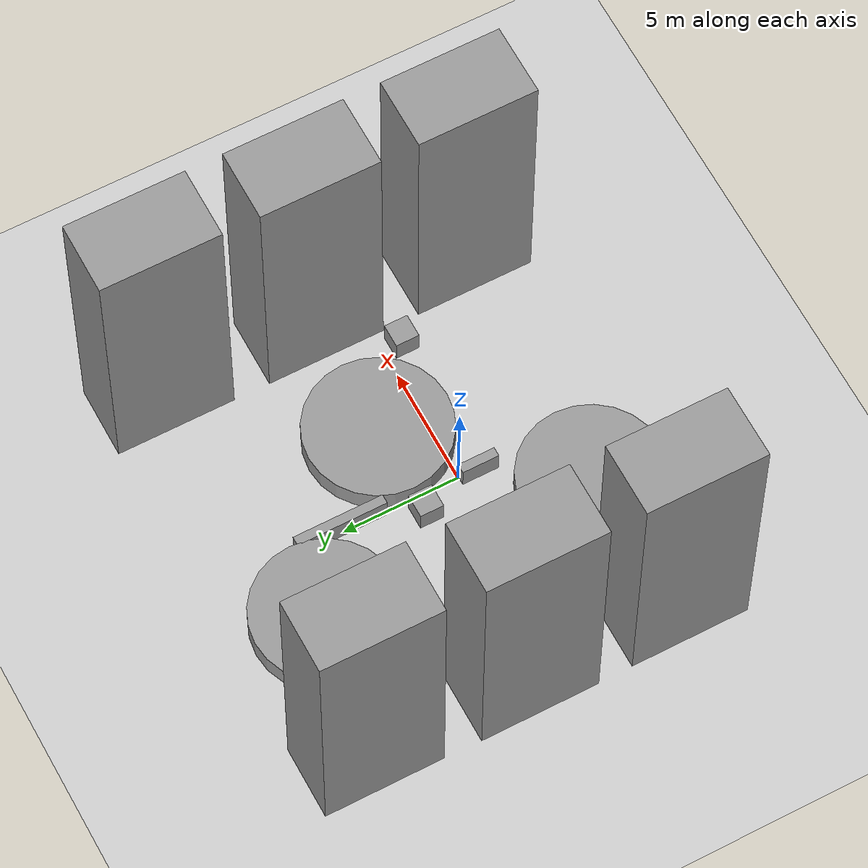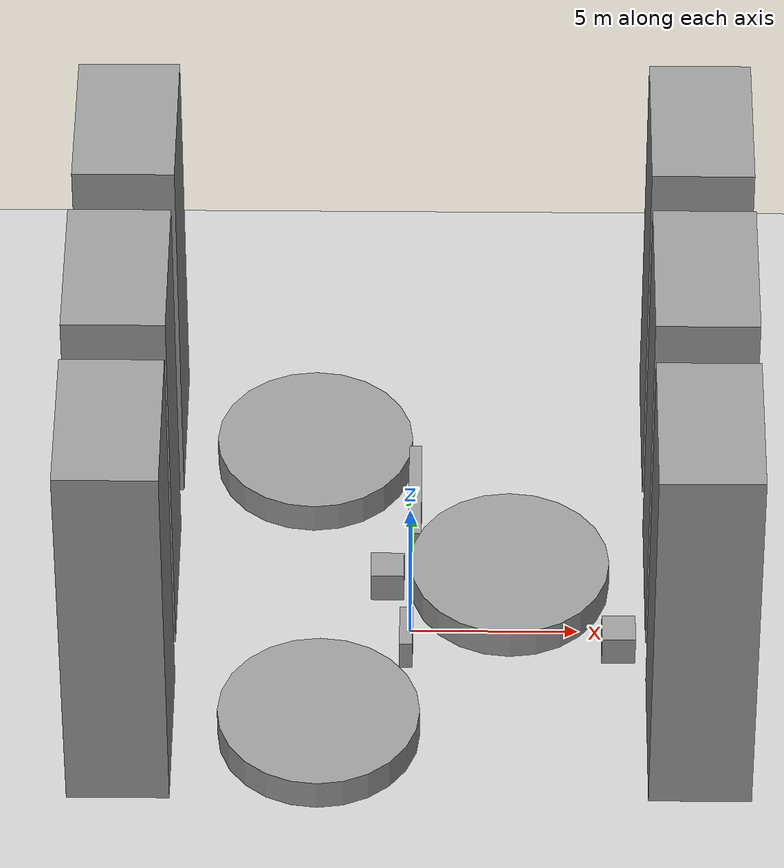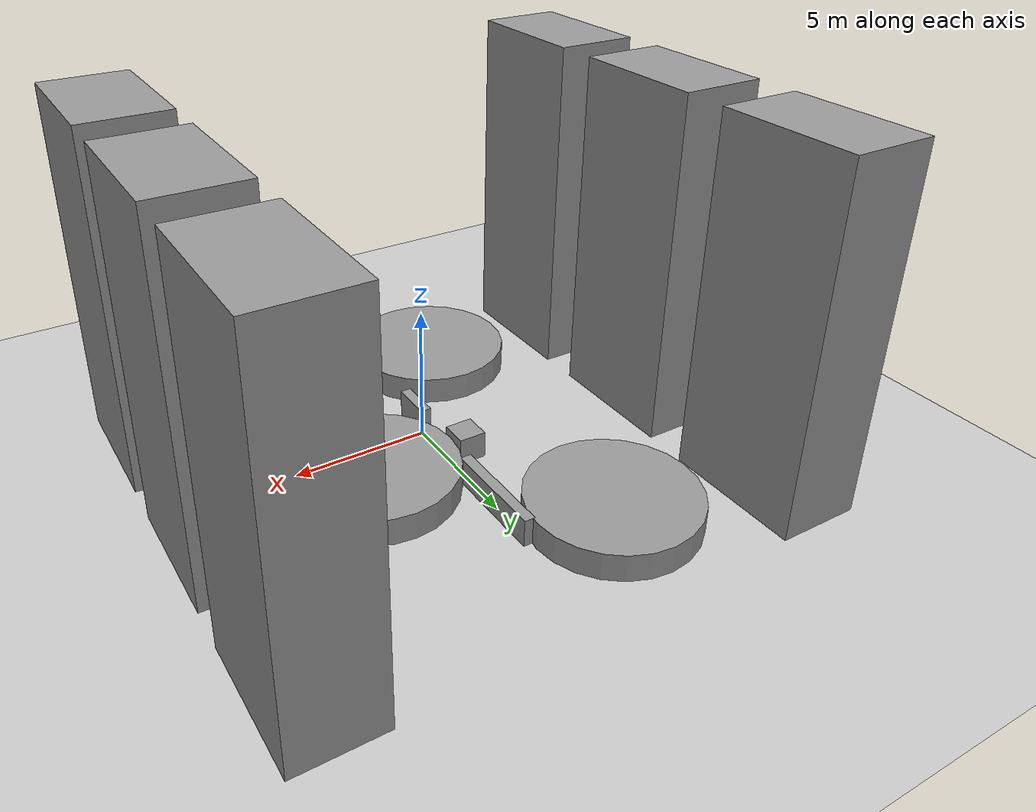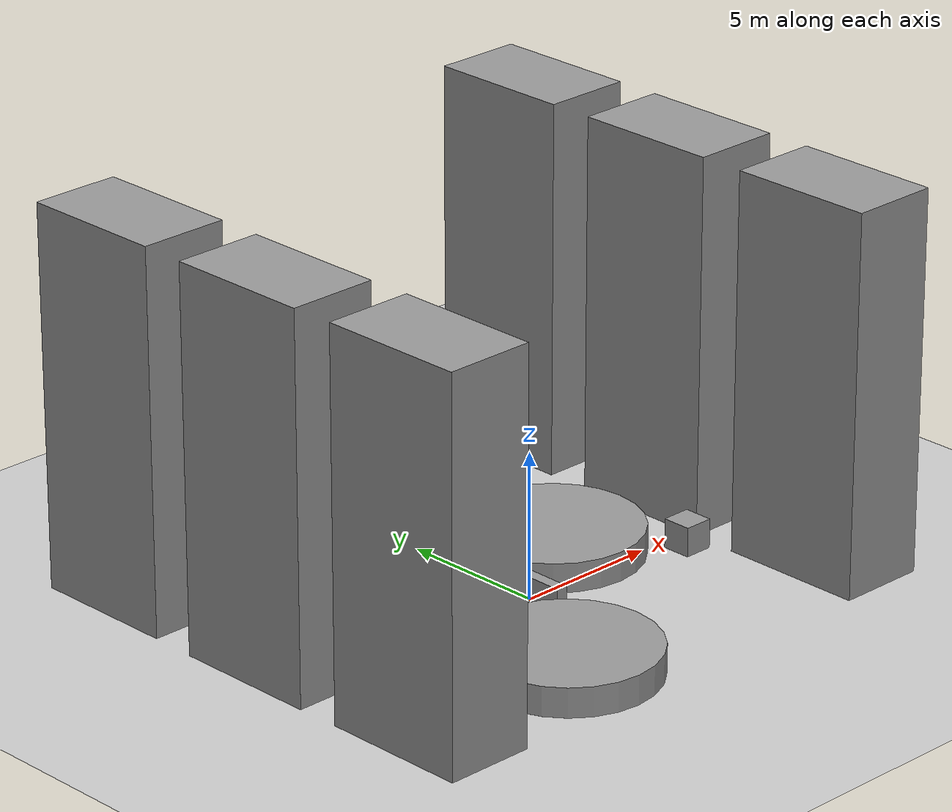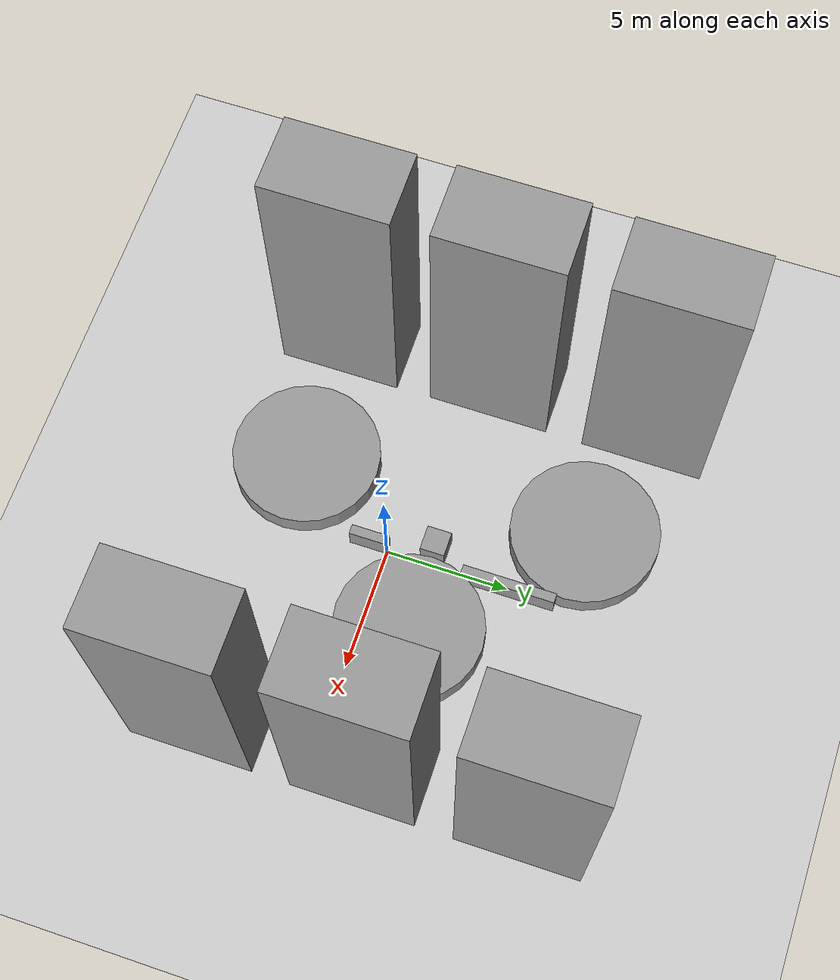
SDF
<sdf version="1.6">
 <world name="default">
  <light name="sun" type="directional">
   <pose>0 0 10 0 -0 0</pose>
   <diffuse>0.8 0.8 0.8 1</diffuse>
   <specular>0.1 0.1 0.1 1</specular>
   <attenuation>
    <range>1000</range>
    <constant>0.9</constant>
    <linear>0.01</linear>
    <quadratic>0.001</quadratic>
   </attenuation>
   <direction>-0.5 0.5 -1</direction>
  </light>
  <model name="ground_plane">
   <static>1</static>
   <link name="link">
    <collision name="collision">
     <geometry><plane><normal>0 0 1</normal><size>100 100</size></plane></geometry>
     <surface><friction><ode><mu>100</mu><mu2>50</mu2></ode></friction></surface>
    </collision>
    <visual name="visual">
     <cast_shadows>0</cast_shadows>
     <geometry><plane><normal>0 0 1</normal><size>100 100</size></plane></geometry>
     <material>
      <script><uri>file://media/materials/scripts/gazebo.material</uri><name>Gazebo/Grey</name></script>
     </material>
    </visual>
   </link>
  </model>
  <gravity>0 0 -9.8</gravity>
  <magnetic_field>6e-06 2.3e-05 -4.2e-05</magnetic_field>
  <atmosphere type="adiabatic"/>
  <physics name="default_physics" default="0" type="ode">
   <max_step_size>0.001</max_step_size>
   <real_time_factor>1</real_time_factor>
   <real_time_update_rate>1000</real_time_update_rate>
  </physics>
  <scene><ambient>0.4 0.4 0.4 1</ambient><background>0.7 0.7 0.7 1</background><shadows>1</shadows></scene>
  <spherical_coordinates>
   <surface_model>EARTH_WGS84</surface_model>
   <latitude_deg>0</latitude_deg>
   <longitude_deg>0</longitude_deg>
   <elevation>0</elevation>
   <heading_deg>0</heading_deg>
  </spherical_coordinates>
  <audio><device>default</device></audio>
  <model name="unit_box_0">
   <link name="link">
    <inertial>
     <mass>1</mass>
     <inertia>
      <ixx>0.166667</ixx>
      <ixy>0</ixy>
      <ixz>0</ixz>
      <iyy>0.166667</iyy>
      <iyz>0</iyz>
      <izz>0.166667</izz>
     </inertia>
    </inertial>
    <visual name="visual">
     <geometry><box><size>0.391763 1.55857 1</size></box></geometry>
     <material>
      <script><name>Gazebo/Grey</name><uri>file://media/materials/scripts/gazebo.material</uri></script>
     </material>
    </visual>
    <collision name="collision">
     <geometry><box><size>0.391763 1.55857 1</size></box></geometry>
     <surface>
      <friction>
       <ode><mu>1</mu><mu2>1</mu2><fdir1>0 0 0</fdir1><slip1>0</slip1><slip2>0</slip2></ode>
       <torsional>
        <coefficient>1</coefficient>
        <patch_radius>0</patch_radius>
        <surface_radius>0</surface_radius>
        <use_patch_radius>1</use_patch_radius>
        <ode><slip>0</slip></ode>
       </torsional>
      </friction>
      <bounce><restitution_coefficient>0</restitution_coefficient><threshold>1e+06</threshold></bounce>
      <contact>
       <collide_without_contact>0</collide_without_contact>
       <collide_without_contact_bitmask>1</collide_without_contact_bitmask>
       <collide_bitmask>1</collide_bitmask>
       <ode>
        <soft_cfm>0</soft_cfm>
        <soft_erp>0.2</soft_erp>
        <kp>1e+13</kp>
        <kd>1</kd>
        <max_vel>0.01</max_vel>
        <min_depth>0</min_depth>
       </ode>
       <bullet>
        <split_impulse>1</split_impulse>
        <split_impulse_penetration_threshold>-0.01</split_impulse_penetration_threshold>
        <soft_cfm>0</soft_cfm>
        <soft_erp>0.2</soft_erp>
        <kp>1e+13</kp>
        <kd>1</kd>
       </bullet>
      </contact>
     </surface>
    </collision>
   </link>
   <static>1</static>
   <pose>-0.134652 -0.770759 0.5 0 2e-06 -2e-05</pose>
  </model>
  <model name="unit_cylinder">
   <link name="link">
    <inertial>
     <mass>1</mass>
     <inertia><ixx>0.145833</ixx><ixy>0</ixy><ixz>0</ixz><iyy>0.145833</iyy><iyz>0</iyz><izz>0.125</izz></inertia>
    </inertial>
    <visual name="visual">
     <geometry><cylinder><radius>2.99181</radius><length>1</length></cylinder></geometry>
     <material>
      <script><name>Gazebo/Grey</name><uri>file://media/materials/scripts/gazebo.material</uri></script>
     </material>
    </visual>
    <collision name="collision">
     <geometry><cylinder><radius>2.99181</radius><length>1</length></cylinder></geometry>
     <surface>
      <friction>
       <ode><mu>1</mu><mu2>1</mu2><fdir1>0 0 0</fdir1><slip1>0</slip1><slip2>0</slip2></ode>
       <torsional>
        <coefficient>1</coefficient>
        <patch_radius>0</patch_radius>
        <surface_radius>0</surface_radius>
        <use_patch_radius>1</use_patch_radius>
        <ode><slip>0</slip></ode>
       </torsional>
      </friction>
      <bounce><restitution_coefficient>0</restitution_coefficient><threshold>1e+06</threshold></bounce>
      <contact>
       <collide_without_contact>0</collide_without_contact>
       <collide_without_contact_bitmask>1</collide_without_contact_bitmask>
       <collide_bitmask>1</collide_bitmask>
       <ode>
        <soft_cfm>0</soft_cfm>
        <soft_erp>0.2</soft_erp>
        <kp>1e+13</kp>
        <kd>1</kd>
        <max_vel>0.01</max_vel>
        <min_depth>0</min_depth>
       </ode>
       <bullet>
        <split_impulse>1</split_impulse>
        <split_impulse_penetration_threshold>-0.01</split_impulse_penetration_threshold>
        <soft_cfm>0</soft_cfm>
        <soft_erp>0.2</soft_erp>
        <kp>1e+13</kp>
        <kd>1</kd>
       </bullet>
      </contact>
     </surface>
    </collision>
   </link>
   <static>1</static>
   <pose>-2.68251 -4.3235 0.499996 1e-06 1e-06 0.000953</pose>
  </model>
  <model name="unit_cylinder_clone">
   <link name="link">
    <inertial>
     <mass>1</mass>
     <inertia><ixx>0.145833</ixx><ixy>0</ixy><ixz>0</ixz><iyy>0.145833</iyy><iyz>0</iyz><izz>0.125</izz></inertia>
    </inertial>
    <visual name="visual">
     <geometry><cylinder><radius>2.99181</radius><length>1</length></cylinder></geometry>
     <material>
      <script><name>Gazebo/Grey</name><uri>file://media/materials/scripts/gazebo.material</uri></script>
     </material>
    </visual>
    <collision name="collision">
     <geometry><cylinder><radius>2.99181</radius><length>1</length></cylinder></geometry>
     <surface>
      <friction>
       <ode><mu>1</mu><mu2>1</mu2><fdir1>0 0 0</fdir1><slip1>0</slip1><slip2>0</slip2></ode>
       <torsional>
        <coefficient>1</coefficient>
        <patch_radius>0</patch_radius>
        <surface_radius>0</surface_radius>
        <use_patch_radius>1</use_patch_radius>
        <ode><slip>0</slip></ode>
       </torsional>
      </friction>
      <bounce><restitution_coefficient>0</restitution_coefficient><threshold>1e+06</threshold></bounce>
      <contact>
       <collide_without_contact>0</collide_without_contact>
       <collide_without_contact_bitmask>1</collide_without_contact_bitmask>
       <collide_bitmask>1</collide_bitmask>
       <ode>
        <soft_cfm>0</soft_cfm>
        <soft_erp>0.2</soft_erp>
        <kp>1e+13</kp>
        <kd>1</kd>
        <max_vel>0.01</max_vel>
        <min_depth>0</min_depth>
       </ode>
       <bullet>
        <split_impulse>1</split_impulse>
        <split_impulse_penetration_threshold>-0.01</split_impulse_penetration_threshold>
        <soft_cfm>0</soft_cfm>
        <soft_erp>0.2</soft_erp>
        <kp>1e+13</kp>
        <kd>1</kd>
       </bullet>
      </contact>
     </surface>
    </collision>
   </link>
   <static>1</static>
   <pose>2.96714 1.92982 0.499996 1e-06 1e-06 0.000953</pose>
  </model>
  <model name="unit_cylinder_clone_0">
   <link name="link">
    <inertial>
     <mass>1</mass>
     <inertia><ixx>0.145833</ixx><ixy>0</ixy><ixz>0</ixz><iyy>0.145833</iyy><iyz>0</iyz><izz>0.125</izz></inertia>
    </inertial>
    <visual name="visual">
     <geometry><cylinder><radius>2.99181</radius><length>1</length></cylinder></geometry>
     <material>
      <script><name>Gazebo/Grey</name><uri>file://media/materials/scripts/gazebo.material</uri></script>
     </material>
    </visual>
    <collision name="collision">
     <geometry><cylinder><radius>2.99181</radius><length>1</length></cylinder></geometry>
     <surface>
      <friction>
       <ode><mu>1</mu><mu2>1</mu2><fdir1>0 0 0</fdir1><slip1>0</slip1><slip2>0</slip2></ode>
       <torsional>
        <coefficient>1</coefficient>
        <patch_radius>0</patch_radius>
        <surface_radius>0</surface_radius>
        <use_patch_radius>1</use_patch_radius>
        <ode><slip>0</slip></ode>
       </torsional>
      </friction>
      <bounce><restitution_coefficient>0</restitution_coefficient><threshold>1e+06</threshold></bounce>
      <contact>
       <collide_without_contact>0</collide_without_contact>
       <collide_without_contact_bitmask>1</collide_without_contact_bitmask>
       <collide_bitmask>1</collide_bitmask>
       <ode>
        <soft_cfm>0</soft_cfm>
        <soft_erp>0.2</soft_erp>
        <kp>1e+13</kp>
        <kd>1</kd>
        <max_vel>0.01</max_vel>
        <min_depth>0</min_depth>
       </ode>
       <bullet>
        <split_impulse>1</split_impulse>
        <split_impulse_penetration_threshold>-0.01</split_impulse_penetration_threshold>
        <soft_cfm>0</soft_cfm>
        <soft_erp>0.2</soft_erp>
        <kp>1e+13</kp>
        <kd>1</kd>
       </bullet>
      </contact>
     </surface>
    </collision>
   </link>
   <static>1</static>
   <pose>-2.98854 7.28031 0.499996 1e-06 1e-06 0.000953</pose>
  </model>
  <model name="building_1">
   <link name="link_0">
    <inertial>
     <mass>194.191</mass>
     <inertia><ixx>3088.08</ixx><ixy>0</ixy><ixz>0</ixz><iyy>2833.44</iyy><iyz>0</iyz><izz>550.342</izz></inertia>
    </inertial>
    <pose>-1.79176 -1.02079 -0 0 -0 0</pose>
    <visual name="visual">
     <geometry><box><size>3.02265 4.98717 12.8824</size></box></geometry>
     <material>
      <lighting>1</lighting>
      <script><uri>file://media/materials/scripts/gazebo.material</uri><name>Gazebo/Grey</name></script>
     </material>
    </visual>
    <collision name="collision">
     <geometry><box><size>3.02265 4.98717 12.8824</size></box></geometry>
     <surface>
      <friction>
       <ode><mu>1</mu><mu2>1</mu2><fdir1>0 0 0</fdir1><slip1>0</slip1><slip2>0</slip2></ode>
       <torsional>
        <coefficient>1</coefficient>
        <patch_radius>0</patch_radius>
        <surface_radius>0</surface_radius>
        <use_patch_radius>1</use_patch_radius>
        <ode><slip>0</slip></ode>
       </torsional>
      </friction>
      <bounce><restitution_coefficient>0</restitution_coefficient><threshold>1e+06</threshold></bounce>
      <contact>
       <collide_without_contact>0</collide_without_contact>
       <collide_without_contact_bitmask>1</collide_without_contact_bitmask>
       <collide_bitmask>1</collide_bitmask>
       <ode>
        <soft_cfm>0</soft_cfm>
        <soft_erp>0.2</soft_erp>
        <kp>1e+13</kp>
        <kd>1</kd>
        <max_vel>0.01</max_vel>
        <min_depth>0</min_depth>
       </ode>
       <bullet>
        <split_impulse>1</split_impulse>
        <split_impulse_penetration_threshold>-0.01</split_impulse_penetration_threshold>
        <soft_cfm>0</soft_cfm>
        <soft_erp>0.2</soft_erp>
        <kp>1e+13</kp>
        <kd>1</kd>
       </bullet>
      </contact>
     </surface>
    </collision>
   </link>
   <static>1</static>
   <pose>-6.76737 2.98424 6.4412 0 -0 0.0002</pose>
  </model>
  <model name="building_1_clone">
   <link name="link_0">
    <inertial>
     <mass>194.191</mass>
     <inertia><ixx>3088.08</ixx><ixy>0</ixy><ixz>0</ixz><iyy>2833.44</iyy><iyz>0</iyz><izz>550.342</izz></inertia>
    </inertial>
    <pose>-1.79176 -1.02079 -0 0 -0 0</pose>
    <visual name="visual">
     <geometry><box><size>3.02265 4.98717 12.8824</size></box></geometry>
     <material>
      <lighting>1</lighting>
      <script><uri>file://media/materials/scripts/gazebo.material</uri><name>Gazebo/Grey</name></script>
     </material>
    </visual>
    <collision name="collision">
     <geometry><box><size>3.02265 4.98717 12.8824</size></box></geometry>
     <surface>
      <friction>
       <ode><mu>1</mu><mu2>1</mu2><fdir1>0 0 0</fdir1><slip1>0</slip1><slip2>0</slip2></ode>
       <torsional>
        <coefficient>1</coefficient>
        <patch_radius>0</patch_radius>
        <surface_radius>0</surface_radius>
        <use_patch_radius>1</use_patch_radius>
        <ode><slip>0</slip></ode>
       </torsional>
      </friction>
      <bounce><restitution_coefficient>0</restitution_coefficient><threshold>1e+06</threshold></bounce>
      <contact>
       <collide_without_contact>0</collide_without_contact>
       <collide_without_contact_bitmask>1</collide_without_contact_bitmask>
       <collide_bitmask>1</collide_bitmask>
       <ode>
        <soft_cfm>0</soft_cfm>
        <soft_erp>0.2</soft_erp>
        <kp>1e+13</kp>
        <kd>1</kd>
        <max_vel>0.01</max_vel>
        <min_depth>0</min_depth>
       </ode>
       <bullet>
        <split_impulse>1</split_impulse>
        <split_impulse_penetration_threshold>-0.01</split_impulse_penetration_threshold>
        <soft_cfm>0</soft_cfm>
        <soft_erp>0.2</soft_erp>
        <kp>1e+13</kp>
        <kd>1</kd>
       </bullet>
      </contact>
     </surface>
    </collision>
   </link>
   <static>1</static>
   <pose>-6.73637 -3.45466 6.4412 0 -0 0.0002</pose>
  </model>
  <model name="building_1_clone_0">
   <link name="link_0">
    <inertial>
     <mass>194.191</mass>
     <inertia><ixx>3088.08</ixx><ixy>0</ixy><ixz>0</ixz><iyy>2833.44</iyy><iyz>0</iyz><izz>550.342</izz></inertia>
    </inertial>
    <pose>-1.79176 -1.02079 -0 0 -0 0</pose>
    <visual name="visual">
     <geometry><box><size>3.02265 4.98717 12.8824</size></box></geometry>
     <material>
      <lighting>1</lighting>
      <script><uri>file://media/materials/scripts/gazebo.material</uri><name>Gazebo/Grey</name></script>
     </material>
    </visual>
    <collision name="collision">
     <geometry><box><size>3.02265 4.98717 12.8824</size></box></geometry>
     <surface>
      <friction>
       <ode><mu>1</mu><mu2>1</mu2><fdir1>0 0 0</fdir1><slip1>0</slip1><slip2>0</slip2></ode>
       <torsional>
        <coefficient>1</coefficient>
        <patch_radius>0</patch_radius>
        <surface_radius>0</surface_radius>
        <use_patch_radius>1</use_patch_radius>
        <ode><slip>0</slip></ode>
       </torsional>
      </friction>
      <bounce><restitution_coefficient>0</restitution_coefficient><threshold>1e+06</threshold></bounce>
      <contact>
       <collide_without_contact>0</collide_without_contact>
       <collide_without_contact_bitmask>1</collide_without_contact_bitmask>
       <collide_bitmask>1</collide_bitmask>
       <ode>
        <soft_cfm>0</soft_cfm>
        <soft_erp>0.2</soft_erp>
        <kp>1e+13</kp>
        <kd>1</kd>
        <max_vel>0.01</max_vel>
        <min_depth>0</min_depth>
       </ode>
       <bullet>
        <split_impulse>1</split_impulse>
        <split_impulse_penetration_threshold>-0.01</split_impulse_penetration_threshold>
        <soft_cfm>0</soft_cfm>
        <soft_erp>0.2</soft_erp>
        <kp>1e+13</kp>
        <kd>1</kd>
       </bullet>
      </contact>
     </surface>
    </collision>
   </link>
   <static>1</static>
   <pose>-6.72716 9.5244 6.4412 0 -0 0.0002</pose>
  </model>
  <model name="building_1_clone_1">
   <link name="link_0">
    <inertial>
     <mass>194.191</mass>
     <inertia><ixx>3088.08</ixx><ixy>0</ixy><ixz>0</ixz><iyy>2833.44</iyy><iyz>0</iyz><izz>550.342</izz></inertia>
    </inertial>
    <pose>-1.79176 -1.02079 -0 0 -0 0</pose>
    <visual name="visual">
     <geometry><box><size>3.02265 4.98717 12.8824</size></box></geometry>
     <material>
      <lighting>1</lighting>
      <script><uri>file://media/materials/scripts/gazebo.material</uri><name>Gazebo/Grey</name></script>
     </material>
    </visual>
    <collision name="collision">
     <geometry><box><size>3.02265 4.98717 12.8824</size></box></geometry>
     <surface>
      <friction>
       <ode><mu>1</mu><mu2>1</mu2><fdir1>0 0 0</fdir1><slip1>0</slip1><slip2>0</slip2></ode>
       <torsional>
        <coefficient>1</coefficient>
        <patch_radius>0</patch_radius>
        <surface_radius>0</surface_radius>
        <use_patch_radius>1</use_patch_radius>
        <ode><slip>0</slip></ode>
       </torsional>
      </friction>
      <bounce><restitution_coefficient>0</restitution_coefficient><threshold>1e+06</threshold></bounce>
      <contact>
       <collide_without_contact>0</collide_without_contact>
       <collide_without_contact_bitmask>1</collide_without_contact_bitmask>
       <collide_bitmask>1</collide_bitmask>
       <ode>
        <soft_cfm>0</soft_cfm>
        <soft_erp>0.2</soft_erp>
        <kp>1e+13</kp>
        <kd>1</kd>
        <max_vel>0.01</max_vel>
        <min_depth>0</min_depth>
       </ode>
       <bullet>
        <split_impulse>1</split_impulse>
        <split_impulse_penetration_threshold>-0.01</split_impulse_penetration_threshold>
        <soft_cfm>0</soft_cfm>
        <soft_erp>0.2</soft_erp>
        <kp>1e+13</kp>
        <kd>1</kd>
       </bullet>
      </contact>
     </surface>
    </collision>
   </link>
   <static>1</static>
   <pose>10.3237 -3.45516 6.4412 0 -0 0.0002</pose>
  </model>
  <model name="building_1_clone_2">
   <link name="link_0">
    <inertial>
     <mass>194.191</mass>
     <inertia><ixx>3088.08</ixx><ixy>0</ixy><ixz>0</ixz><iyy>2833.44</iyy><iyz>0</iyz><izz>550.342</izz></inertia>
    </inertial>
    <pose>-1.79176 -1.02079 -0 0 -0 0</pose>
    <visual name="visual">
     <geometry><box><size>3.02265 4.98717 12.8824</size></box></geometry>
     <material>
      <lighting>1</lighting>
      <script><uri>file://media/materials/scripts/gazebo.material</uri><name>Gazebo/Grey</name></script>
     </material>
    </visual>
    <collision name="collision">
     <geometry><box><size>3.02265 4.98717 12.8824</size></box></geometry>
     <surface>
      <friction>
       <ode><mu>1</mu><mu2>1</mu2><fdir1>0 0 0</fdir1><slip1>0</slip1><slip2>0</slip2></ode>
       <torsional>
        <coefficient>1</coefficient>
        <patch_radius>0</patch_radius>
        <surface_radius>0</surface_radius>
        <use_patch_radius>1</use_patch_radius>
        <ode><slip>0</slip></ode>
       </torsional>
      </friction>
      <bounce><restitution_coefficient>0</restitution_coefficient><threshold>1e+06</threshold></bounce>
      <contact>
       <collide_without_contact>0</collide_without_contact>
       <collide_without_contact_bitmask>1</collide_without_contact_bitmask>
       <collide_bitmask>1</collide_bitmask>
       <ode>
        <soft_cfm>0</soft_cfm>
        <soft_erp>0.2</soft_erp>
        <kp>1e+13</kp>
        <kd>1</kd>
        <max_vel>0.01</max_vel>
        <min_depth>0</min_depth>
       </ode>
       <bullet>
        <split_impulse>1</split_impulse>
        <split_impulse_penetration_threshold>-0.01</split_impulse_penetration_threshold>
        <soft_cfm>0</soft_cfm>
        <soft_erp>0.2</soft_erp>
        <kp>1e+13</kp>
        <kd>1</kd>
       </bullet>
      </contact>
     </surface>
    </collision>
   </link>
   <static>1</static>
   <pose>10.3362 3.06728 6.4412 0 -0 0.0002</pose>
  </model>
  <model name="building_1_clone_3">
   <link name="link_0">
    <inertial>
     <mass>194.191</mass>
     <inertia><ixx>3088.08</ixx><ixy>0</ixy><ixz>0</ixz><iyy>2833.44</iyy><iyz>0</iyz><izz>550.342</izz></inertia>
    </inertial>
    <pose>-1.79176 -1.02079 -0 0 -0 0</pose>
    <visual name="visual">
     <geometry><box><size>3.02265 4.98717 12.8824</size></box></geometry>
     <material>
      <lighting>1</lighting>
      <script><uri>file://media/materials/scripts/gazebo.material</uri><name>Gazebo/Grey</name></script>
     </material>
    </visual>
    <collision name="collision">
     <geometry><box><size>3.02265 4.98717 12.8824</size></box></geometry>
     <surface>
      <friction>
       <ode><mu>1</mu><mu2>1</mu2><fdir1>0 0 0</fdir1><slip1>0</slip1><slip2>0</slip2></ode>
       <torsional>
        <coefficient>1</coefficient>
        <patch_radius>0</patch_radius>
        <surface_radius>0</surface_radius>
        <use_patch_radius>1</use_patch_radius>
        <ode><slip>0</slip></ode>
       </torsional>
      </friction>
      <bounce><restitution_coefficient>0</restitution_coefficient><threshold>1e+06</threshold></bounce>
      <contact>
       <collide_without_contact>0</collide_without_contact>
       <collide_without_contact_bitmask>1</collide_without_contact_bitmask>
       <collide_bitmask>1</collide_bitmask>
       <ode>
        <soft_cfm>0</soft_cfm>
        <soft_erp>0.2</soft_erp>
        <kp>1e+13</kp>
        <kd>1</kd>
        <max_vel>0.01</max_vel>
        <min_depth>0</min_depth>
       </ode>
       <bullet>
        <split_impulse>1</split_impulse>
        <split_impulse_penetration_threshold>-0.01</split_impulse_penetration_threshold>
        <soft_cfm>0</soft_cfm>
        <soft_erp>0.2</soft_erp>
        <kp>1e+13</kp>
        <kd>1</kd>
       </bullet>
      </contact>
     </surface>
    </collision>
   </link>
   <static>1</static>
   <pose>10.3402 9.57666 6.4412 0 -0 0.0002</pose>
  </model>
  <model name="unit_box">
   <link name="link">
    <inertial>
     <mass>1</mass>
     <inertia>
      <ixx>0.166667</ixx>
      <ixy>0</ixy>
      <ixz>0</ixz>
      <iyy>0.166667</iyy>
      <iyz>0</iyz>
      <izz>0.166667</izz>
     </inertia>
    </inertial>
    <visual name="visual">
     <geometry><box><size>1 1 1</size></box></geometry>
     <material>
      <script><name>Gazebo/Grey</name><uri>file://media/materials/scripts/gazebo.material</uri></script>
     </material>
    </visual>
    <collision name="collision">
     <geometry><box><size>1 1 1</size></box></geometry>
     <surface>
      <friction>
       <ode><mu>1</mu><mu2>1</mu2><fdir1>0 0 0</fdir1><slip1>0</slip1><slip2>0</slip2></ode>
       <torsional>
        <coefficient>1</coefficient>
        <patch_radius>0</patch_radius>
        <surface_radius>0</surface_radius>
        <use_patch_radius>1</use_patch_radius>
        <ode><slip>0</slip></ode>
       </torsional>
      </friction>
      <bounce><restitution_coefficient>0</restitution_coefficient><threshold>1e+06</threshold></bounce>
      <contact>
       <collide_without_contact>0</collide_without_contact>
       <collide_without_contact_bitmask>1</collide_without_contact_bitmask>
       <collide_bitmask>1</collide_bitmask>
       <ode>
        <soft_cfm>0</soft_cfm>
        <soft_erp>0.2</soft_erp>
        <kp>1e+13</kp>
        <kd>1</kd>
        <max_vel>0.01</max_vel>
        <min_depth>0</min_depth>
       </ode>
       <bullet>
        <split_impulse>1</split_impulse>
        <split_impulse_penetration_threshold>-0.01</split_impulse_penetration_threshold>
        <soft_cfm>0</soft_cfm>
        <soft_erp>0.2</soft_erp>
        <kp>1e+13</kp>
        <kd>1</kd>
       </bullet>
      </contact>
     </surface>
    </collision>
   </link>
   <static>1</static>
   <pose>-0.716178 1.81031 0.5 0 -0 0</pose>
  </model>
  <model name="unit_box_clone">
   <link name="link">
    <inertial>
     <mass>1</mass>
     <inertia>
      <ixx>0.166667</ixx>
      <ixy>0</ixy>
      <ixz>0</ixz>
      <iyy>0.166667</iyy>
      <iyz>0</iyz>
      <izz>0.166667</izz>
     </inertia>
    </inertial>
    <visual name="visual">
     <geometry><box><size>1 1 1</size></box></geometry>
     <material>
      <script><name>Gazebo/Grey</name><uri>file://media/materials/scripts/gazebo.material</uri></script>
     </material>
    </visual>
    <collision name="collision">
     <geometry><box><size>1 1 1</size></box></geometry>
     <surface>
      <friction>
       <ode><mu>1</mu><mu2>1</mu2><fdir1>0 0 0</fdir1><slip1>0</slip1><slip2>0</slip2></ode>
       <torsional>
        <coefficient>1</coefficient>
        <patch_radius>0</patch_radius>
        <surface_radius>0</surface_radius>
        <use_patch_radius>1</use_patch_radius>
        <ode><slip>0</slip></ode>
       </torsional>
      </friction>
      <bounce><restitution_coefficient>0</restitution_coefficient><threshold>1e+06</threshold></bounce>
      <contact>
       <collide_without_contact>0</collide_without_contact>
       <collide_without_contact_bitmask>1</collide_without_contact_bitmask>
       <collide_bitmask>1</collide_bitmask>
       <ode>
        <soft_cfm>0</soft_cfm>
        <soft_erp>0.2</soft_erp>
        <kp>1e+13</kp>
        <kd>1</kd>
        <max_vel>0.01</max_vel>
        <min_depth>0</min_depth>
       </ode>
       <bullet>
        <split_impulse>1</split_impulse>
        <split_impulse_penetration_threshold>-0.01</split_impulse_penetration_threshold>
        <soft_cfm>0</soft_cfm>
        <soft_erp>0.2</soft_erp>
        <kp>1e+13</kp>
        <kd>1</kd>
       </bullet>
      </contact>
     </surface>
    </collision>
   </link>
   <static>1</static>
   <pose>6.21141 -0.819662 0.5 0 -0 0</pose>
  </model>
  <model name="unit_box_0_clone">
   <link name="link">
    <inertial>
     <mass>1</mass>
     <inertia>
      <ixx>0.166667</ixx>
      <ixy>0</ixy>
      <ixz>0</ixz>
      <iyy>0.166667</iyy>
      <iyz>0</iyz>
      <izz>0.166667</izz>
     </inertia>
    </inertial>
    <visual name="visual">
     <geometry><box><size>0.391763 3.83902 1</size></box></geometry>
     <material>
      <script><name>Gazebo/Grey</name><uri>file://media/materials/scripts/gazebo.material</uri></script>
     </material>
    </visual>
    <collision name="collision">
     <geometry><box><size>0.391763 3.83902 1</size></box></geometry>
     <surface>
      <friction>
       <ode><mu>1</mu><mu2>1</mu2><fdir1>0 0 0</fdir1><slip1>0</slip1><slip2>0</slip2></ode>
       <torsional>
        <coefficient>1</coefficient>
        <patch_radius>0</patch_radius>
        <surface_radius>0</surface_radius>
        <use_patch_radius>1</use_patch_radius>
        <ode><slip>0</slip></ode>
       </torsional>
      </friction>
      <bounce><restitution_coefficient>0</restitution_coefficient><threshold>1e+06</threshold></bounce>
      <contact>
       <collide_without_contact>0</collide_without_contact>
       <collide_without_contact_bitmask>1</collide_without_contact_bitmask>
       <collide_bitmask>1</collide_bitmask>
       <ode>
        <soft_cfm>0</soft_cfm>
        <soft_erp>0.2</soft_erp>
        <kp>1e+13</kp>
        <kd>1</kd>
        <max_vel>0.01</max_vel>
        <min_depth>0</min_depth>
       </ode>
       <bullet>
        <split_impulse>1</split_impulse>
        <split_impulse_penetration_threshold>-0.01</split_impulse_penetration_threshold>
        <soft_cfm>0</soft_cfm>
        <soft_erp>0.2</soft_erp>
        <kp>1e+13</kp>
        <kd>1</kd>
       </bullet>
      </contact>
     </surface>
    </collision>
   </link>
   <static>1</static>
   <pose>0.088312 5.06873 0.5 0 2e-06 -2e-05</pose>
  </model>
 </world>
</sdf>
